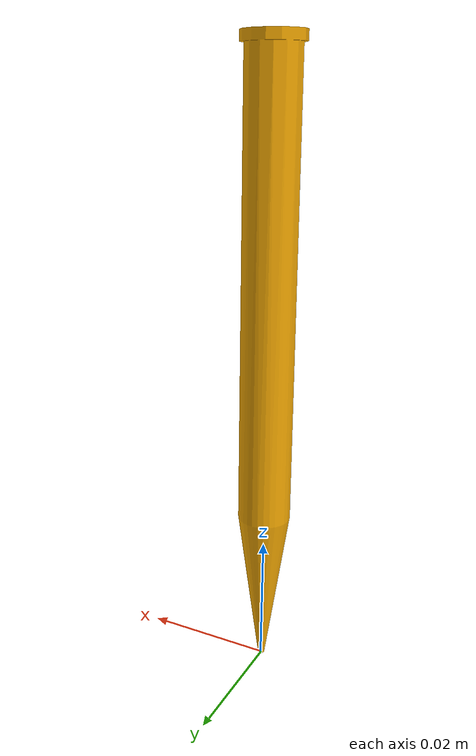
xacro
<?xml version="1.0" ?>
<robot xmlns:xacro="http://www.ros.org/wiki/xacro" name="tip">
    <link name='tip'>
        <visual name='visual'>
            <geometry>
                <mesh filename="meshes/tip.stl"/>
            </geometry>
            <material name="clay" />
        </visual>
    </link>
</robot>
